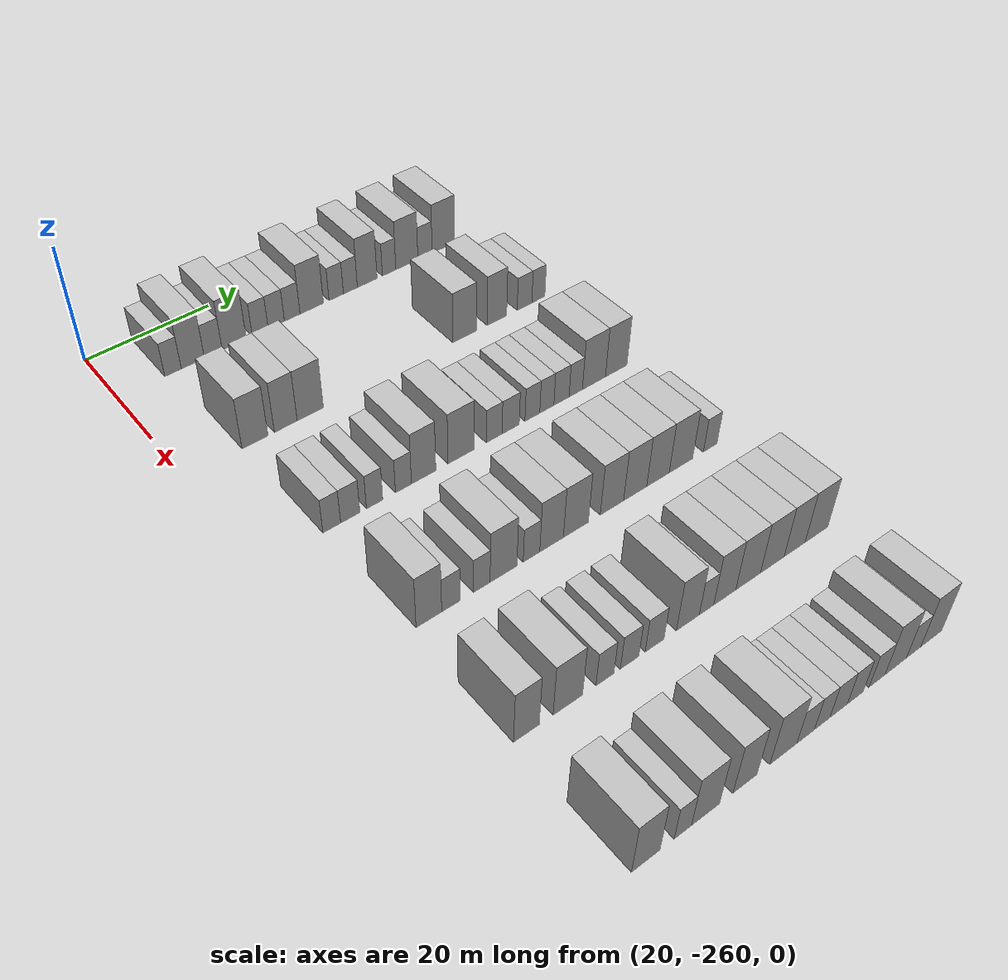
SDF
<sdf version="1.6">
 <world name="default">
  <model name="building_27">
   <static>1</static>
   <pose>25.0000 -251.3607 0 0.000000 0.000000 0.000000</pose>
   <link name="link">
    <pose>0 0 3.00 0 0 0</pose>
    <collision name="collision"><geometry><box><size>10.0000 2.6298 6.0000</size></box></geometry></collision>
    <visual name="visual">
     <cast_shadows>0</cast_shadows>
     <geometry><box><size>10.0000 2.6298 6.0000</size></box></geometry>
     <material>
      <script>
       <uri>model://HANNAS_wall/materials/scripts</uri>
       <uri>model://HANNAS_wall/materials/textures</uri>
       <name>vrc/HANNAS_wall</name>
      </script>
     </material>
    </visual>
   </link>
  </model>
  <model name="building_28">
   <static>1</static>
   <pose>25.0000 -248.1810 0 0.000000 0.000000 0.000000</pose>
   <link name="link">
    <pose>0 0 4.50 0 0 0</pose>
    <collision name="collision"><geometry><box><size>10.0000 3.7296 9.0000</size></box></geometry></collision>
    <visual name="visual">
     <cast_shadows>0</cast_shadows>
     <geometry><box><size>10.0000 3.7296 9.0000</size></box></geometry>
     <material>
      <script>
       <uri>model://HANNAS_wall/materials/scripts</uri>
       <uri>model://HANNAS_wall/materials/textures</uri>
       <name>vrc/HANNAS_wall</name>
      </script>
     </material>
    </visual>
   </link>
  </model>
  <model name="building_29">
   <static>1</static>
   <pose>25.0000 -244.8584 0 0.000000 0.000000 0.000000</pose>
   <link name="link">
    <pose>0 0 3.00 0 0 0</pose>
    <collision name="collision"><geometry><box><size>10.0000 2.9156 6.0000</size></box></geometry></collision>
    <visual name="visual">
     <cast_shadows>0</cast_shadows>
     <geometry><box><size>10.0000 2.9156 6.0000</size></box></geometry>
     <material>
      <script>
       <uri>model://HANNAS_wall/materials/scripts</uri>
       <uri>model://HANNAS_wall/materials/textures</uri>
       <name>vrc/HANNAS_wall</name>
      </script>
     </material>
    </visual>
   </link>
  </model>
  <model name="building_30">
   <static>1</static>
   <pose>25.0000 -241.3975 0 0.000000 0.000000 0.000000</pose>
   <link name="link">
    <pose>0 0 4.50 0 0 0</pose>
    <collision name="collision"><geometry><box><size>10.0000 4.0063 9.0000</size></box></geometry></collision>
    <visual name="visual">
     <cast_shadows>0</cast_shadows>
     <geometry><box><size>10.0000 4.0063 9.0000</size></box></geometry>
     <material>
      <script>
       <uri>model://HANNAS_wall/materials/scripts</uri>
       <uri>model://HANNAS_wall/materials/textures</uri>
       <name>vrc/HANNAS_wall</name>
      </script>
     </material>
    </visual>
   </link>
  </model>
  <model name="building_31">
   <static>1</static>
   <pose>25.0000 -237.0428 0 0.000000 0.000000 0.000000</pose>
   <link name="link">
    <pose>0 0 3.00 0 0 0</pose>
    <collision name="collision"><geometry><box><size>10.0000 2.7030 6.0000</size></box></geometry></collision>
    <visual name="visual">
     <cast_shadows>0</cast_shadows>
     <geometry><box><size>10.0000 2.7030 6.0000</size></box></geometry>
     <material>
      <script>
       <uri>model://HANNAS_wall/materials/scripts</uri>
       <uri>model://HANNAS_wall/materials/textures</uri>
       <name>vrc/HANNAS_wall</name>
      </script>
     </material>
    </visual>
   </link>
  </model>
  <model name="building_32">
   <static>1</static>
   <pose>25.0000 -234.2940 0 0.000000 0.000000 0.000000</pose>
   <link name="link">
    <pose>0 0 3.00 0 0 0</pose>
    <collision name="collision"><geometry><box><size>10.0000 2.7945 6.0000</size></box></geometry></collision>
    <visual name="visual">
     <cast_shadows>0</cast_shadows>
     <geometry><box><size>10.0000 2.7945 6.0000</size></box></geometry>
     <material>
      <script>
       <uri>model://HANNAS_wall/materials/scripts</uri>
       <uri>model://HANNAS_wall/materials/textures</uri>
       <name>vrc/HANNAS_wall</name>
      </script>
     </material>
    </visual>
   </link>
  </model>
  <model name="building_33">
   <static>1</static>
   <pose>25.0000 -231.5453 0 0.000000 0.000000 0.000000</pose>
   <link name="link">
    <pose>0 0 3.00 0 0 0</pose>
    <collision name="collision"><geometry><box><size>10.0000 2.7030 6.0000</size></box></geometry></collision>
    <visual name="visual">
     <cast_shadows>0</cast_shadows>
     <geometry><box><size>10.0000 2.7030 6.0000</size></box></geometry>
     <material>
      <script>
       <uri>model://HANNAS_wall/materials/scripts</uri>
       <uri>model://HANNAS_wall/materials/textures</uri>
       <name>vrc/HANNAS_wall</name>
      </script>
     </material>
    </visual>
   </link>
  </model>
  <model name="building_34">
   <static>1</static>
   <pose>25.0000 -228.1290 0 0.000000 0.000000 0.000000</pose>
   <link name="link">
    <pose>0 0 4.50 0 0 0</pose>
    <collision name="collision"><geometry><box><size>10.0000 4.1295 9.0000</size></box></geometry></collision>
    <visual name="visual">
     <cast_shadows>0</cast_shadows>
     <geometry><box><size>10.0000 4.1295 9.0000</size></box></geometry>
     <material>
      <script>
       <uri>model://HANNAS_wall/materials/scripts</uri>
       <uri>model://HANNAS_wall/materials/textures</uri>
       <name>vrc/HANNAS_wall</name>
      </script>
     </material>
    </visual>
   </link>
  </model>
  <model name="building_35">
   <static>1</static>
   <pose>25.0000 -223.7657 0 0.000000 0.000000 0.000000</pose>
   <link name="link">
    <pose>0 0 3.00 0 0 0</pose>
    <collision name="collision"><geometry><box><size>10.0000 2.5970 6.0000</size></box></geometry></collision>
    <visual name="visual">
     <cast_shadows>0</cast_shadows>
     <geometry><box><size>10.0000 2.5970 6.0000</size></box></geometry>
     <material>
      <script>
       <uri>model://HANNAS_wall/materials/scripts</uri>
       <uri>model://HANNAS_wall/materials/textures</uri>
       <name>vrc/HANNAS_wall</name>
      </script>
     </material>
    </visual>
   </link>
  </model>
  <model name="building_36">
   <static>1</static>
   <pose>25.0000 -221.1965 0 0.000000 0.000000 0.000000</pose>
   <link name="link">
    <pose>0 0 3.00 0 0 0</pose>
    <collision name="collision"><geometry><box><size>10.0000 2.5414 6.0000</size></box></geometry></collision>
    <visual name="visual">
     <cast_shadows>0</cast_shadows>
     <geometry><box><size>10.0000 2.5414 6.0000</size></box></geometry>
     <material>
      <script>
       <uri>model://HANNAS_wall/materials/scripts</uri>
       <uri>model://HANNAS_wall/materials/textures</uri>
       <name>vrc/HANNAS_wall</name>
      </script>
     </material>
    </visual>
   </link>
  </model>
  <model name="building_37">
   <static>1</static>
   <pose>25.0000 -218.1152 0 0.000000 0.000000 0.000000</pose>
   <link name="link">
    <pose>0 0 4.50 0 0 0</pose>
    <collision name="collision"><geometry><box><size>10.0000 3.6212 9.0000</size></box></geometry></collision>
    <visual name="visual">
     <cast_shadows>0</cast_shadows>
     <geometry><box><size>10.0000 3.6212 9.0000</size></box></geometry>
     <material>
      <script>
       <uri>model://HANNAS_wall/materials/scripts</uri>
       <uri>model://HANNAS_wall/materials/textures</uri>
       <name>vrc/HANNAS_wall</name>
      </script>
     </material>
    </visual>
   </link>
  </model>
  <model name="building_38">
   <static>1</static>
   <pose>25.0000 -214.0465 0 0.000000 0.000000 0.000000</pose>
   <link name="link">
    <pose>0 0 3.00 0 0 0</pose>
    <collision name="collision"><geometry><box><size>10.0000 2.5162 6.0000</size></box></geometry></collision>
    <visual name="visual">
     <cast_shadows>0</cast_shadows>
     <geometry><box><size>10.0000 2.5162 6.0000</size></box></geometry>
     <material>
      <script>
       <uri>model://HANNAS_wall/materials/scripts</uri>
       <uri>model://HANNAS_wall/materials/textures</uri>
       <name>vrc/HANNAS_wall</name>
      </script>
     </material>
    </visual>
   </link>
  </model>
  <model name="building_39">
   <static>1</static>
   <pose>25.0000 -210.6895 0 0.000000 0.000000 0.000000</pose>
   <link name="link">
    <pose>0 0 4.50 0 0 0</pose>
    <collision name="collision"><geometry><box><size>10.0000 4.1977 9.0000</size></box></geometry></collision>
    <visual name="visual">
     <cast_shadows>0</cast_shadows>
     <geometry><box><size>10.0000 4.1977 9.0000</size></box></geometry>
     <material>
      <script>
       <uri>model://HANNAS_wall/materials/scripts</uri>
       <uri>model://HANNAS_wall/materials/textures</uri>
       <name>vrc/HANNAS_wall</name>
      </script>
     </material>
    </visual>
   </link>
  </model>
  <model name="building_40">
   <static>1</static>
   <pose>25.0000 -207.2130 0 0.000000 0.000000 0.000000</pose>
   <link name="link">
    <pose>0 0 3.00 0 0 0</pose>
    <collision name="collision"><geometry><box><size>10.0000 2.7553 6.0000</size></box></geometry></collision>
    <visual name="visual">
     <cast_shadows>0</cast_shadows>
     <geometry><box><size>10.0000 2.7553 6.0000</size></box></geometry>
     <material>
      <script>
       <uri>model://HANNAS_wall/materials/scripts</uri>
       <uri>model://HANNAS_wall/materials/textures</uri>
       <name>vrc/HANNAS_wall</name>
      </script>
     </material>
    </visual>
   </link>
  </model>
  <model name="building_41">
   <static>1</static>
   <pose>25.0000 -203.6301 0 0.000000 0.000000 0.000000</pose>
   <link name="link">
    <pose>0 0 4.50 0 0 0</pose>
    <collision name="collision"><geometry><box><size>10.0000 4.4104 9.0000</size></box></geometry></collision>
    <visual name="visual">
     <cast_shadows>0</cast_shadows>
     <geometry><box><size>10.0000 4.4104 9.0000</size></box></geometry>
     <material>
      <script>
       <uri>model://HANNAS_wall/materials/scripts</uri>
       <uri>model://HANNAS_wall/materials/textures</uri>
       <name>vrc/HANNAS_wall</name>
      </script>
     </material>
    </visual>
   </link>
  </model>
  <model name="building_198">
   <static>1</static>
   <pose>44.0000 -249.3220 0 0.000000 0.000000 0.000000</pose>
   <link name="link">
    <pose>0 0 4.50 0 0 0</pose>
    <collision name="collision"><geometry><box><size>10.0000 4.0390 9.0000</size></box></geometry></collision>
    <visual name="visual">
     <cast_shadows>0</cast_shadows>
     <geometry><box><size>10.0000 4.0390 9.0000</size></box></geometry>
     <material>
      <script>
       <uri>model://HANNAS_wall/materials/scripts</uri>
       <uri>model://HANNAS_wall/materials/textures</uri>
       <name>vrc/HANNAS_wall</name>
      </script>
     </material>
    </visual>
   </link>
  </model>
  <model name="building_199">
   <static>1</static>
   <pose>44.0000 -244.4851 0 0.000000 0.000000 0.000000</pose>
   <link name="link">
    <pose>0 0 4.50 0 0 0</pose>
    <collision name="collision"><geometry><box><size>10.0000 3.6348 9.0000</size></box></geometry></collision>
    <visual name="visual">
     <cast_shadows>0</cast_shadows>
     <geometry><box><size>10.0000 3.6348 9.0000</size></box></geometry>
     <material>
      <script>
       <uri>model://HANNAS_wall/materials/scripts</uri>
       <uri>model://HANNAS_wall/materials/textures</uri>
       <name>vrc/HANNAS_wall</name>
      </script>
     </material>
    </visual>
   </link>
  </model>
  <model name="building_200">
   <static>1</static>
   <pose>44.0000 -240.5481 0 0.000000 0.000000 0.000000</pose>
   <link name="link">
    <pose>0 0 4.50 0 0 0</pose>
    <collision name="collision"><geometry><box><size>10.0000 4.2391 9.0000</size></box></geometry></collision>
    <visual name="visual">
     <cast_shadows>0</cast_shadows>
     <geometry><box><size>10.0000 4.2391 9.0000</size></box></geometry>
     <material>
      <script>
       <uri>model://HANNAS_wall/materials/scripts</uri>
       <uri>model://HANNAS_wall/materials/textures</uri>
       <name>vrc/HANNAS_wall</name>
      </script>
     </material>
    </visual>
   </link>
  </model>
  <model name="building_201">
   <static>1</static>
   <pose>44.0000 -213.9507 0 0.000000 0.000000 0.000000</pose>
   <link name="link">
    <pose>0 0 4.50 0 0 0</pose>
    <collision name="collision"><geometry><box><size>10.0000 4.3186 9.0000</size></box></geometry></collision>
    <visual name="visual">
     <cast_shadows>0</cast_shadows>
     <geometry><box><size>10.0000 4.3186 9.0000</size></box></geometry>
     <material>
      <script>
       <uri>model://HANNAS_wall/materials/scripts</uri>
       <uri>model://HANNAS_wall/materials/textures</uri>
       <name>vrc/HANNAS_wall</name>
      </script>
     </material>
    </visual>
   </link>
  </model>
  <model name="building_202">
   <static>1</static>
   <pose>44.0000 -207.9545 0 0.000000 0.000000 0.000000</pose>
   <link name="link">
    <pose>0 0 4.50 0 0 0</pose>
    <collision name="collision"><geometry><box><size>10.0000 3.6740 9.0000</size></box></geometry></collision>
    <visual name="visual">
     <cast_shadows>0</cast_shadows>
     <geometry><box><size>10.0000 3.6740 9.0000</size></box></geometry>
     <material>
      <script>
       <uri>model://HANNAS_wall/materials/scripts</uri>
       <uri>model://HANNAS_wall/materials/textures</uri>
       <name>vrc/HANNAS_wall</name>
      </script>
     </material>
    </visual>
   </link>
  </model>
  <model name="building_203">
   <static>1</static>
   <pose>44.0000 -202.7004 0 0.000000 0.000000 0.000000</pose>
   <link name="link">
    <pose>0 0 3.00 0 0 0</pose>
    <collision name="collision"><geometry><box><size>10.0000 2.8342 6.0000</size></box></geometry></collision>
    <visual name="visual">
     <cast_shadows>0</cast_shadows>
     <geometry><box><size>10.0000 2.8342 6.0000</size></box></geometry>
     <material>
      <script>
       <uri>model://HANNAS_wall/materials/scripts</uri>
       <uri>model://HANNAS_wall/materials/textures</uri>
       <name>vrc/HANNAS_wall</name>
      </script>
     </material>
    </visual>
   </link>
  </model>
  <model name="building_204">
   <static>1</static>
   <pose>44.0000 -200.0197 0 0.000000 0.000000 0.000000</pose>
   <link name="link">
    <pose>0 0 3.00 0 0 0</pose>
    <collision name="collision"><geometry><box><size>10.0000 2.5272 6.0000</size></box></geometry></collision>
    <visual name="visual">
     <cast_shadows>0</cast_shadows>
     <geometry><box><size>10.0000 2.5272 6.0000</size></box></geometry>
     <material>
      <script>
       <uri>model://HANNAS_wall/materials/scripts</uri>
       <uri>model://HANNAS_wall/materials/textures</uri>
       <name>vrc/HANNAS_wall</name>
      </script>
     </material>
    </visual>
   </link>
  </model>
  <model name="building_364">
   <static>1</static>
   <pose>63.0000 -249.5340 0 0.000000 0.000000 0.000000</pose>
   <link name="link">
    <pose>0 0 3.00 0 0 0</pose>
    <collision name="collision"><geometry><box><size>10.0000 2.6676 6.0000</size></box></geometry></collision>
    <visual name="visual">
     <cast_shadows>0</cast_shadows>
     <geometry><box><size>10.0000 2.6676 6.0000</size></box></geometry>
     <material>
      <script>
       <uri>model://HANNAS_wall/materials/scripts</uri>
       <uri>model://HANNAS_wall/materials/textures</uri>
       <name>vrc/HANNAS_wall</name>
      </script>
     </material>
    </visual>
   </link>
  </model>
  <model name="building_365">
   <static>1</static>
   <pose>63.0000 -246.7293 0 0.000000 0.000000 0.000000</pose>
   <link name="link">
    <pose>0 0 3.00 0 0 0</pose>
    <collision name="collision"><geometry><box><size>10.0000 2.9418 6.0000</size></box></geometry></collision>
    <visual name="visual">
     <cast_shadows>0</cast_shadows>
     <geometry><box><size>10.0000 2.9418 6.0000</size></box></geometry>
     <material>
      <script>
       <uri>model://HANNAS_wall/materials/scripts</uri>
       <uri>model://HANNAS_wall/materials/textures</uri>
       <name>vrc/HANNAS_wall</name>
      </script>
     </material>
    </visual>
   </link>
  </model>
  <model name="building_366">
   <static>1</static>
   <pose>63.0000 -242.9924 0 0.000000 0.000000 0.000000</pose>
   <link name="link">
    <pose>0 0 3.00 0 0 0</pose>
    <collision name="collision"><geometry><box><size>10.0000 2.5319 6.0000</size></box></geometry></collision>
    <visual name="visual">
     <cast_shadows>0</cast_shadows>
     <geometry><box><size>10.0000 2.5319 6.0000</size></box></geometry>
     <material>
      <script>
       <uri>model://HANNAS_wall/materials/scripts</uri>
       <uri>model://HANNAS_wall/materials/textures</uri>
       <name>vrc/HANNAS_wall</name>
      </script>
     </material>
    </visual>
   </link>
  </model>
  <model name="building_367">
   <static>1</static>
   <pose>63.0000 -238.4544 0 0.000000 0.000000 0.000000</pose>
   <link name="link">
    <pose>0 0 3.00 0 0 0</pose>
    <collision name="collision"><geometry><box><size>10.0000 2.5442 6.0000</size></box></geometry></collision>
    <visual name="visual">
     <cast_shadows>0</cast_shadows>
     <geometry><box><size>10.0000 2.5442 6.0000</size></box></geometry>
     <material>
      <script>
       <uri>model://HANNAS_wall/materials/scripts</uri>
       <uri>model://HANNAS_wall/materials/textures</uri>
       <name>vrc/HANNAS_wall</name>
      </script>
     </material>
    </visual>
   </link>
  </model>
  <model name="building_368">
   <static>1</static>
   <pose>63.0000 -235.2157 0 0.000000 0.000000 0.000000</pose>
   <link name="link">
    <pose>0 0 4.50 0 0 0</pose>
    <collision name="collision"><geometry><box><size>10.0000 3.9334 9.0000</size></box></geometry></collision>
    <visual name="visual">
     <cast_shadows>0</cast_shadows>
     <geometry><box><size>10.0000 3.9334 9.0000</size></box></geometry>
     <material>
      <script>
       <uri>model://HANNAS_wall/materials/scripts</uri>
       <uri>model://HANNAS_wall/materials/textures</uri>
       <name>vrc/HANNAS_wall</name>
      </script>
     </material>
    </visual>
   </link>
  </model>
  <model name="building_369">
   <static>1</static>
   <pose>63.0000 -229.0474 0 0.000000 0.000000 0.000000</pose>
   <link name="link">
    <pose>0 0 4.50 0 0 0</pose>
    <collision name="collision"><geometry><box><size>10.0000 4.4032 9.0000</size></box></geometry></collision>
    <visual name="visual">
     <cast_shadows>0</cast_shadows>
     <geometry><box><size>10.0000 4.4032 9.0000</size></box></geometry>
     <material>
      <script>
       <uri>model://HANNAS_wall/materials/scripts</uri>
       <uri>model://HANNAS_wall/materials/textures</uri>
       <name>vrc/HANNAS_wall</name>
      </script>
     </material>
    </visual>
   </link>
  </model>
  <model name="building_370">
   <static>1</static>
   <pose>63.0000 -223.4872 0 0.000000 0.000000 0.000000</pose>
   <link name="link">
    <pose>0 0 3.00 0 0 0</pose>
    <collision name="collision"><geometry><box><size>10.0000 2.7170 6.0000</size></box></geometry></collision>
    <visual name="visual">
     <cast_shadows>0</cast_shadows>
     <geometry><box><size>10.0000 2.7170 6.0000</size></box></geometry>
     <material>
      <script>
       <uri>model://HANNAS_wall/materials/scripts</uri>
       <uri>model://HANNAS_wall/materials/textures</uri>
       <name>vrc/HANNAS_wall</name>
      </script>
     </material>
    </visual>
   </link>
  </model>
  <model name="building_371">
   <static>1</static>
   <pose>63.0000 -220.6418 0 0.000000 0.000000 0.000000</pose>
   <link name="link">
    <pose>0 0 3.00 0 0 0</pose>
    <collision name="collision"><geometry><box><size>10.0000 2.9738 6.0000</size></box></geometry></collision>
    <visual name="visual">
     <cast_shadows>0</cast_shadows>
     <geometry><box><size>10.0000 2.9738 6.0000</size></box></geometry>
     <material>
      <script>
       <uri>model://HANNAS_wall/materials/scripts</uri>
       <uri>model://HANNAS_wall/materials/textures</uri>
       <name>vrc/HANNAS_wall</name>
      </script>
     </material>
    </visual>
   </link>
  </model>
  <model name="building_372">
   <static>1</static>
   <pose>63.0000 -216.8454 0 0.000000 0.000000 0.000000</pose>
   <link name="link">
    <pose>0 0 3.00 0 0 0</pose>
    <collision name="collision"><geometry><box><size>10.0000 2.6191 6.0000</size></box></geometry></collision>
    <visual name="visual">
     <cast_shadows>0</cast_shadows>
     <geometry><box><size>10.0000 2.6191 6.0000</size></box></geometry>
     <material>
      <script>
       <uri>model://HANNAS_wall/materials/scripts</uri>
       <uri>model://HANNAS_wall/materials/textures</uri>
       <name>vrc/HANNAS_wall</name>
      </script>
     </material>
    </visual>
   </link>
  </model>
  <model name="building_373">
   <static>1</static>
   <pose>63.0000 -214.2724 0 0.000000 0.000000 0.000000</pose>
   <link name="link">
    <pose>0 0 3.00 0 0 0</pose>
    <collision name="collision"><geometry><box><size>10.0000 2.5268 6.0000</size></box></geometry></collision>
    <visual name="visual">
     <cast_shadows>0</cast_shadows>
     <geometry><box><size>10.0000 2.5268 6.0000</size></box></geometry>
     <material>
      <script>
       <uri>model://HANNAS_wall/materials/scripts</uri>
       <uri>model://HANNAS_wall/materials/textures</uri>
       <name>vrc/HANNAS_wall</name>
      </script>
     </material>
    </visual>
   </link>
  </model>
  <model name="building_374">
   <static>1</static>
   <pose>63.0000 -211.6332 0 0.000000 0.000000 0.000000</pose>
   <link name="link">
    <pose>0 0 3.00 0 0 0</pose>
    <collision name="collision"><geometry><box><size>10.0000 2.7517 6.0000</size></box></geometry></collision>
    <visual name="visual">
     <cast_shadows>0</cast_shadows>
     <geometry><box><size>10.0000 2.7517 6.0000</size></box></geometry>
     <material>
      <script>
       <uri>model://HANNAS_wall/materials/scripts</uri>
       <uri>model://HANNAS_wall/materials/textures</uri>
       <name>vrc/HANNAS_wall</name>
      </script>
     </material>
    </visual>
   </link>
  </model>
  <model name="building_375">
   <static>1</static>
   <pose>63.0000 -209.0331 0 0.000000 0.000000 0.000000</pose>
   <link name="link">
    <pose>0 0 3.00 0 0 0</pose>
    <collision name="collision"><geometry><box><size>10.0000 2.4486 6.0000</size></box></geometry></collision>
    <visual name="visual">
     <cast_shadows>0</cast_shadows>
     <geometry><box><size>10.0000 2.4486 6.0000</size></box></geometry>
     <material>
      <script>
       <uri>model://HANNAS_wall/materials/scripts</uri>
       <uri>model://HANNAS_wall/materials/textures</uri>
       <name>vrc/HANNAS_wall</name>
      </script>
     </material>
    </visual>
   </link>
  </model>
  <model name="building_376">
   <static>1</static>
   <pose>63.0000 -205.6578 0 0.000000 0.000000 0.000000</pose>
   <link name="link">
    <pose>0 0 4.50 0 0 0</pose>
    <collision name="collision"><geometry><box><size>10.0000 4.3020 9.0000</size></box></geometry></collision>
    <visual name="visual">
     <cast_shadows>0</cast_shadows>
     <geometry><box><size>10.0000 4.3020 9.0000</size></box></geometry>
     <material>
      <script>
       <uri>model://HANNAS_wall/materials/scripts</uri>
       <uri>model://HANNAS_wall/materials/textures</uri>
       <name>vrc/HANNAS_wall</name>
      </script>
     </material>
    </visual>
   </link>
  </model>
  <model name="building_377">
   <static>1</static>
   <pose>63.0000 -201.4614 0 0.000000 0.000000 0.000000</pose>
   <link name="link">
    <pose>0 0 4.50 0 0 0</pose>
    <collision name="collision"><geometry><box><size>10.0000 4.0907 9.0000</size></box></geometry></collision>
    <visual name="visual">
     <cast_shadows>0</cast_shadows>
     <geometry><box><size>10.0000 4.0907 9.0000</size></box></geometry>
     <material>
      <script>
       <uri>model://HANNAS_wall/materials/scripts</uri>
       <uri>model://HANNAS_wall/materials/textures</uri>
       <name>vrc/HANNAS_wall</name>
      </script>
     </material>
    </visual>
   </link>
  </model>
  <model name="building_535">
   <static>1</static>
   <pose>82.0000 -248.3261 0 0.000000 0.000000 0.000000</pose>
   <link name="link">
    <pose>0 0 4.50 0 0 0</pose>
    <collision name="collision"><geometry><box><size>10.0000 3.7575 9.0000</size></box></geometry></collision>
    <visual name="visual">
     <cast_shadows>0</cast_shadows>
     <geometry><box><size>10.0000 3.7575 9.0000</size></box></geometry>
     <material>
      <script>
       <uri>model://HANNAS_wall/materials/scripts</uri>
       <uri>model://HANNAS_wall/materials/textures</uri>
       <name>vrc/HANNAS_wall</name>
      </script>
     </material>
    </visual>
   </link>
  </model>
  <model name="building_536">
   <static>1</static>
   <pose>82.0000 -245.0575 0 0.000000 0.000000 0.000000</pose>
   <link name="link">
    <pose>0 0 3.00 0 0 0</pose>
    <collision name="collision"><geometry><box><size>10.0000 2.7796 6.0000</size></box></geometry></collision>
    <visual name="visual">
     <cast_shadows>0</cast_shadows>
     <geometry><box><size>10.0000 2.7796 6.0000</size></box></geometry>
     <material>
      <script>
       <uri>model://HANNAS_wall/materials/scripts</uri>
       <uri>model://HANNAS_wall/materials/textures</uri>
       <name>vrc/HANNAS_wall</name>
      </script>
     </material>
    </visual>
   </link>
  </model>
  <model name="building_537">
   <static>1</static>
   <pose>82.0000 -240.4036 0 0.000000 0.000000 0.000000</pose>
   <link name="link">
    <pose>0 0 3.00 0 0 0</pose>
    <collision name="collision"><geometry><box><size>10.0000 2.5282 6.0000</size></box></geometry></collision>
    <visual name="visual">
     <cast_shadows>0</cast_shadows>
     <geometry><box><size>10.0000 2.5282 6.0000</size></box></geometry>
     <material>
      <script>
       <uri>model://HANNAS_wall/materials/scripts</uri>
       <uri>model://HANNAS_wall/materials/textures</uri>
       <name>vrc/HANNAS_wall</name>
      </script>
     </material>
    </visual>
   </link>
  </model>
  <model name="building_538">
   <static>1</static>
   <pose>82.0000 -237.0514 0 0.000000 0.000000 0.000000</pose>
   <link name="link">
    <pose>0 0 4.50 0 0 0</pose>
    <collision name="collision"><geometry><box><size>10.0000 4.1762 9.0000</size></box></geometry></collision>
    <visual name="visual">
     <cast_shadows>0</cast_shadows>
     <geometry><box><size>10.0000 4.1762 9.0000</size></box></geometry>
     <material>
      <script>
       <uri>model://HANNAS_wall/materials/scripts</uri>
       <uri>model://HANNAS_wall/materials/textures</uri>
       <name>vrc/HANNAS_wall</name>
      </script>
     </material>
    </visual>
   </link>
  </model>
  <model name="building_539">
   <static>1</static>
   <pose>82.0000 -232.6423 0 0.000000 0.000000 0.000000</pose>
   <link name="link">
    <pose>0 0 3.00 0 0 0</pose>
    <collision name="collision"><geometry><box><size>10.0000 2.6421 6.0000</size></box></geometry></collision>
    <visual name="visual">
     <cast_shadows>0</cast_shadows>
     <geometry><box><size>10.0000 2.6421 6.0000</size></box></geometry>
     <material>
      <script>
       <uri>model://HANNAS_wall/materials/scripts</uri>
       <uri>model://HANNAS_wall/materials/textures</uri>
       <name>vrc/HANNAS_wall</name>
      </script>
     </material>
    </visual>
   </link>
  </model>
  <model name="building_540">
   <static>1</static>
   <pose>82.0000 -229.3990 0 0.000000 0.000000 0.000000</pose>
   <link name="link">
    <pose>0 0 4.50 0 0 0</pose>
    <collision name="collision"><geometry><box><size>10.0000 3.8444 9.0000</size></box></geometry></collision>
    <visual name="visual">
     <cast_shadows>0</cast_shadows>
     <geometry><box><size>10.0000 3.8444 9.0000</size></box></geometry>
     <material>
      <script>
       <uri>model://HANNAS_wall/materials/scripts</uri>
       <uri>model://HANNAS_wall/materials/textures</uri>
       <name>vrc/HANNAS_wall</name>
      </script>
     </material>
    </visual>
   </link>
  </model>
  <model name="building_541">
   <static>1</static>
   <pose>82.0000 -225.4076 0 0.000000 0.000000 0.000000</pose>
   <link name="link">
    <pose>0 0 4.50 0 0 0</pose>
    <collision name="collision"><geometry><box><size>10.0000 4.1384 9.0000</size></box></geometry></collision>
    <visual name="visual">
     <cast_shadows>0</cast_shadows>
     <geometry><box><size>10.0000 4.1384 9.0000</size></box></geometry>
     <material>
      <script>
       <uri>model://HANNAS_wall/materials/scripts</uri>
       <uri>model://HANNAS_wall/materials/textures</uri>
       <name>vrc/HANNAS_wall</name>
      </script>
     </material>
    </visual>
   </link>
  </model>
  <model name="building_542">
   <static>1</static>
   <pose>82.0000 -219.3367 0 0.000000 0.000000 0.000000</pose>
   <link name="link">
    <pose>0 0 4.50 0 0 0</pose>
    <collision name="collision"><geometry><box><size>10.0000 4.0033 9.0000</size></box></geometry></collision>
    <visual name="visual">
     <cast_shadows>0</cast_shadows>
     <geometry><box><size>10.0000 4.0033 9.0000</size></box></geometry>
     <material>
      <script>
       <uri>model://HANNAS_wall/materials/scripts</uri>
       <uri>model://HANNAS_wall/materials/textures</uri>
       <name>vrc/HANNAS_wall</name>
      </script>
     </material>
    </visual>
   </link>
  </model>
  <model name="building_543">
   <static>1</static>
   <pose>82.0000 -215.3202 0 0.000000 0.000000 0.000000</pose>
   <link name="link">
    <pose>0 0 4.50 0 0 0</pose>
    <collision name="collision"><geometry><box><size>10.0000 4.0296 9.0000</size></box></geometry></collision>
    <visual name="visual">
     <cast_shadows>0</cast_shadows>
     <geometry><box><size>10.0000 4.0296 9.0000</size></box></geometry>
     <material>
      <script>
       <uri>model://HANNAS_wall/materials/scripts</uri>
       <uri>model://HANNAS_wall/materials/textures</uri>
       <name>vrc/HANNAS_wall</name>
      </script>
     </material>
    </visual>
   </link>
  </model>
  <model name="building_544">
   <static>1</static>
   <pose>82.0000 -211.2929 0 0.000000 0.000000 0.000000</pose>
   <link name="link">
    <pose>0 0 4.50 0 0 0</pose>
    <collision name="collision"><geometry><box><size>10.0000 4.0251 9.0000</size></box></geometry></collision>
    <visual name="visual">
     <cast_shadows>0</cast_shadows>
     <geometry><box><size>10.0000 4.0251 9.0000</size></box></geometry>
     <material>
      <script>
       <uri>model://HANNAS_wall/materials/scripts</uri>
       <uri>model://HANNAS_wall/materials/textures</uri>
       <name>vrc/HANNAS_wall</name>
      </script>
     </material>
    </visual>
   </link>
  </model>
  <model name="building_545">
   <static>1</static>
   <pose>82.0000 -207.1516 0 0.000000 0.000000 0.000000</pose>
   <link name="link">
    <pose>0 0 4.50 0 0 0</pose>
    <collision name="collision"><geometry><box><size>10.0000 4.2574 9.0000</size></box></geometry></collision>
    <visual name="visual">
     <cast_shadows>0</cast_shadows>
     <geometry><box><size>10.0000 4.2574 9.0000</size></box></geometry>
     <material>
      <script>
       <uri>model://HANNAS_wall/materials/scripts</uri>
       <uri>model://HANNAS_wall/materials/textures</uri>
       <name>vrc/HANNAS_wall</name>
      </script>
     </material>
    </visual>
   </link>
  </model>
  <model name="building_546">
   <static>1</static>
   <pose>82.0000 -201.7597 0 0.000000 0.000000 0.000000</pose>
   <link name="link">
    <pose>0 0 3.00 0 0 0</pose>
    <collision name="collision"><geometry><box><size>10.0000 2.5264 6.0000</size></box></geometry></collision>
    <visual name="visual">
     <cast_shadows>0</cast_shadows>
     <geometry><box><size>10.0000 2.5264 6.0000</size></box></geometry>
     <material>
      <script>
       <uri>model://HANNAS_wall/materials/scripts</uri>
       <uri>model://HANNAS_wall/materials/textures</uri>
       <name>vrc/HANNAS_wall</name>
      </script>
     </material>
    </visual>
   </link>
  </model>
  <model name="building_702">
   <static>1</static>
   <pose>101.0000 -249.0085 0 0.000000 0.000000 0.000000</pose>
   <link name="link">
    <pose>0 0 4.50 0 0 0</pose>
    <collision name="collision"><geometry><box><size>10.0000 3.6629 9.0000</size></box></geometry></collision>
    <visual name="visual">
     <cast_shadows>0</cast_shadows>
     <geometry><box><size>10.0000 3.6629 9.0000</size></box></geometry>
     <material>
      <script>
       <uri>model://HANNAS_wall/materials/scripts</uri>
       <uri>model://HANNAS_wall/materials/textures</uri>
       <name>vrc/HANNAS_wall</name>
      </script>
     </material>
    </visual>
   </link>
  </model>
  <model name="building_703">
   <static>1</static>
   <pose>101.0000 -243.0119 0 0.000000 0.000000 0.000000</pose>
   <link name="link">
    <pose>0 0 4.50 0 0 0</pose>
    <collision name="collision"><geometry><box><size>10.0000 4.3303 9.0000</size></box></geometry></collision>
    <visual name="visual">
     <cast_shadows>0</cast_shadows>
     <geometry><box><size>10.0000 4.3303 9.0000</size></box></geometry>
     <material>
      <script>
       <uri>model://HANNAS_wall/materials/scripts</uri>
       <uri>model://HANNAS_wall/materials/textures</uri>
       <name>vrc/HANNAS_wall</name>
      </script>
     </material>
    </visual>
   </link>
  </model>
  <model name="building_704">
   <static>1</static>
   <pose>101.0000 -237.4810 0 0.000000 0.000000 0.000000</pose>
   <link name="link">
    <pose>0 0 3.00 0 0 0</pose>
    <collision name="collision"><geometry><box><size>10.0000 2.7315 6.0000</size></box></geometry></collision>
    <visual name="visual">
     <cast_shadows>0</cast_shadows>
     <geometry><box><size>10.0000 2.7315 6.0000</size></box></geometry>
     <material>
      <script>
       <uri>model://HANNAS_wall/materials/scripts</uri>
       <uri>model://HANNAS_wall/materials/textures</uri>
       <name>vrc/HANNAS_wall</name>
      </script>
     </material>
    </visual>
   </link>
  </model>
  <model name="building_705">
   <static>1</static>
   <pose>101.0000 -233.6904 0 0.000000 0.000000 0.000000</pose>
   <link name="link">
    <pose>0 0 3.00 0 0 0</pose>
    <collision name="collision"><geometry><box><size>10.0000 2.8496 6.0000</size></box></geometry></collision>
    <visual name="visual">
     <cast_shadows>0</cast_shadows>
     <geometry><box><size>10.0000 2.8496 6.0000</size></box></geometry>
     <material>
      <script>
       <uri>model://HANNAS_wall/materials/scripts</uri>
       <uri>model://HANNAS_wall/materials/textures</uri>
       <name>vrc/HANNAS_wall</name>
      </script>
     </material>
    </visual>
   </link>
  </model>
  <model name="building_706">
   <static>1</static>
   <pose>101.0000 -229.7758 0 0.000000 0.000000 0.000000</pose>
   <link name="link">
    <pose>0 0 3.00 0 0 0</pose>
    <collision name="collision"><geometry><box><size>10.0000 2.9796 6.0000</size></box></geometry></collision>
    <visual name="visual">
     <cast_shadows>0</cast_shadows>
     <geometry><box><size>10.0000 2.9796 6.0000</size></box></geometry>
     <material>
      <script>
       <uri>model://HANNAS_wall/materials/scripts</uri>
       <uri>model://HANNAS_wall/materials/textures</uri>
       <name>vrc/HANNAS_wall</name>
      </script>
     </material>
    </visual>
   </link>
  </model>
  <model name="building_707">
   <static>1</static>
   <pose>101.0000 -224.4115 0 0.000000 0.000000 0.000000</pose>
   <link name="link">
    <pose>0 0 4.50 0 0 0</pose>
    <collision name="collision"><geometry><box><size>10.0000 3.7490 9.0000</size></box></geometry></collision>
    <visual name="visual">
     <cast_shadows>0</cast_shadows>
     <geometry><box><size>10.0000 3.7490 9.0000</size></box></geometry>
     <material>
      <script>
       <uri>model://HANNAS_wall/materials/scripts</uri>
       <uri>model://HANNAS_wall/materials/textures</uri>
       <name>vrc/HANNAS_wall</name>
      </script>
     </material>
    </visual>
   </link>
  </model>
  <model name="building_708">
   <static>1</static>
   <pose>101.0000 -221.3368 0 0.000000 0.000000 0.000000</pose>
   <link name="link">
    <pose>0 0 3.00 0 0 0</pose>
    <collision name="collision"><geometry><box><size>10.0000 2.4005 6.0000</size></box></geometry></collision>
    <visual name="visual">
     <cast_shadows>0</cast_shadows>
     <geometry><box><size>10.0000 2.4005 6.0000</size></box></geometry>
     <material>
      <script>
       <uri>model://HANNAS_wall/materials/scripts</uri>
       <uri>model://HANNAS_wall/materials/textures</uri>
       <name>vrc/HANNAS_wall</name>
      </script>
     </material>
    </visual>
   </link>
  </model>
  <model name="building_709">
   <static>1</static>
   <pose>101.0000 -218.2660 0 0.000000 0.000000 0.000000</pose>
   <link name="link">
    <pose>0 0 4.50 0 0 0</pose>
    <collision name="collision"><geometry><box><size>10.0000 3.7410 9.0000</size></box></geometry></collision>
    <visual name="visual">
     <cast_shadows>0</cast_shadows>
     <geometry><box><size>10.0000 3.7410 9.0000</size></box></geometry>
     <material>
      <script>
       <uri>model://HANNAS_wall/materials/scripts</uri>
       <uri>model://HANNAS_wall/materials/textures</uri>
       <name>vrc/HANNAS_wall</name>
      </script>
     </material>
    </visual>
   </link>
  </model>
  <model name="building_710">
   <static>1</static>
   <pose>101.0000 -214.2655 0 0.000000 0.000000 0.000000</pose>
   <link name="link">
    <pose>0 0 4.50 0 0 0</pose>
    <collision name="collision"><geometry><box><size>10.0000 4.2599 9.0000</size></box></geometry></collision>
    <visual name="visual">
     <cast_shadows>0</cast_shadows>
     <geometry><box><size>10.0000 4.2599 9.0000</size></box></geometry>
     <material>
      <script>
       <uri>model://HANNAS_wall/materials/scripts</uri>
       <uri>model://HANNAS_wall/materials/textures</uri>
       <name>vrc/HANNAS_wall</name>
      </script>
     </material>
    </visual>
   </link>
  </model>
  <model name="building_711">
   <static>1</static>
   <pose>101.0000 -210.0337 0 0.000000 0.000000 0.000000</pose>
   <link name="link">
    <pose>0 0 4.50 0 0 0</pose>
    <collision name="collision"><geometry><box><size>10.0000 4.2036 9.0000</size></box></geometry></collision>
    <visual name="visual">
     <cast_shadows>0</cast_shadows>
     <geometry><box><size>10.0000 4.2036 9.0000</size></box></geometry>
     <material>
      <script>
       <uri>model://HANNAS_wall/materials/scripts</uri>
       <uri>model://HANNAS_wall/materials/textures</uri>
       <name>vrc/HANNAS_wall</name>
      </script>
     </material>
    </visual>
   </link>
  </model>
  <model name="building_712">
   <static>1</static>
   <pose>101.0000 -206.0440 0 0.000000 0.000000 0.000000</pose>
   <link name="link">
    <pose>0 0 4.50 0 0 0</pose>
    <collision name="collision"><geometry><box><size>10.0000 3.7759 9.0000</size></box></geometry></collision>
    <visual name="visual">
     <cast_shadows>0</cast_shadows>
     <geometry><box><size>10.0000 3.7759 9.0000</size></box></geometry>
     <material>
      <script>
       <uri>model://HANNAS_wall/materials/scripts</uri>
       <uri>model://HANNAS_wall/materials/textures</uri>
       <name>vrc/HANNAS_wall</name>
      </script>
     </material>
    </visual>
   </link>
  </model>
  <model name="building_713">
   <static>1</static>
   <pose>101.0000 -202.0609 0 0.000000 0.000000 0.000000</pose>
   <link name="link">
    <pose>0 0 4.50 0 0 0</pose>
    <collision name="collision"><geometry><box><size>10.0000 4.1902 9.0000</size></box></geometry></collision>
    <visual name="visual">
     <cast_shadows>0</cast_shadows>
     <geometry><box><size>10.0000 4.1902 9.0000</size></box></geometry>
     <material>
      <script>
       <uri>model://HANNAS_wall/materials/scripts</uri>
       <uri>model://HANNAS_wall/materials/textures</uri>
       <name>vrc/HANNAS_wall</name>
      </script>
     </material>
    </visual>
   </link>
  </model>
  <model name="building_879">
   <static>1</static>
   <pose>120.0000 -248.8615 0 0.000000 0.000000 0.000000</pose>
   <link name="link">
    <pose>0 0 4.50 0 0 0</pose>
    <collision name="collision"><geometry><box><size>10.0000 3.9576 9.0000</size></box></geometry></collision>
    <visual name="visual">
     <cast_shadows>0</cast_shadows>
     <geometry><box><size>10.0000 3.9576 9.0000</size></box></geometry>
     <material>
      <script>
       <uri>model://HANNAS_wall/materials/scripts</uri>
       <uri>model://HANNAS_wall/materials/textures</uri>
       <name>vrc/HANNAS_wall</name>
      </script>
     </material>
    </visual>
   </link>
  </model>
  <model name="building_880">
   <static>1</static>
   <pose>120.0000 -243.6495 0 0.000000 0.000000 0.000000</pose>
   <link name="link">
    <pose>0 0 3.00 0 0 0</pose>
    <collision name="collision"><geometry><box><size>10.0000 2.4665 6.0000</size></box></geometry></collision>
    <visual name="visual">
     <cast_shadows>0</cast_shadows>
     <geometry><box><size>10.0000 2.4665 6.0000</size></box></geometry>
     <material>
      <script>
       <uri>model://HANNAS_wall/materials/scripts</uri>
       <uri>model://HANNAS_wall/materials/textures</uri>
       <name>vrc/HANNAS_wall</name>
      </script>
     </material>
    </visual>
   </link>
  </model>
  <model name="building_881">
   <static>1</static>
   <pose>120.0000 -240.3638 0 0.000000 0.000000 0.000000</pose>
   <link name="link">
    <pose>0 0 4.50 0 0 0</pose>
    <collision name="collision"><geometry><box><size>10.0000 4.1049 9.0000</size></box></geometry></collision>
    <visual name="visual">
     <cast_shadows>0</cast_shadows>
     <geometry><box><size>10.0000 4.1049 9.0000</size></box></geometry>
     <material>
      <script>
       <uri>model://HANNAS_wall/materials/scripts</uri>
       <uri>model://HANNAS_wall/materials/textures</uri>
       <name>vrc/HANNAS_wall</name>
      </script>
     </material>
    </visual>
   </link>
  </model>
  <model name="building_882">
   <static>1</static>
   <pose>120.0000 -234.4900 0 0.000000 0.000000 0.000000</pose>
   <link name="link">
    <pose>0 0 4.50 0 0 0</pose>
    <collision name="collision"><geometry><box><size>10.0000 3.6428 9.0000</size></box></geometry></collision>
    <visual name="visual">
     <cast_shadows>0</cast_shadows>
     <geometry><box><size>10.0000 3.6428 9.0000</size></box></geometry>
     <material>
      <script>
       <uri>model://HANNAS_wall/materials/scripts</uri>
       <uri>model://HANNAS_wall/materials/textures</uri>
       <name>vrc/HANNAS_wall</name>
      </script>
     </material>
    </visual>
   </link>
  </model>
  <model name="building_883">
   <static>1</static>
   <pose>120.0000 -228.5432 0 0.000000 0.000000 0.000000</pose>
   <link name="link">
    <pose>0 0 4.50 0 0 0</pose>
    <collision name="collision"><geometry><box><size>10.0000 4.2509 9.0000</size></box></geometry></collision>
    <visual name="visual">
     <cast_shadows>0</cast_shadows>
     <geometry><box><size>10.0000 4.2509 9.0000</size></box></geometry>
     <material>
      <script>
       <uri>model://HANNAS_wall/materials/scripts</uri>
       <uri>model://HANNAS_wall/materials/textures</uri>
       <name>vrc/HANNAS_wall</name>
      </script>
     </material>
    </visual>
   </link>
  </model>
  <model name="building_884">
   <static>1</static>
   <pose>120.0000 -225.0176 0 0.000000 0.000000 0.000000</pose>
   <link name="link">
    <pose>0 0 3.00 0 0 0</pose>
    <collision name="collision"><geometry><box><size>10.0000 2.8003 6.0000</size></box></geometry></collision>
    <visual name="visual">
     <cast_shadows>0</cast_shadows>
     <geometry><box><size>10.0000 2.8003 6.0000</size></box></geometry>
     <material>
      <script>
       <uri>model://HANNAS_wall/materials/scripts</uri>
       <uri>model://HANNAS_wall/materials/textures</uri>
       <name>vrc/HANNAS_wall</name>
      </script>
     </material>
    </visual>
   </link>
  </model>
  <model name="building_885">
   <static>1</static>
   <pose>120.0000 -222.3537 0 0.000000 0.000000 0.000000</pose>
   <link name="link">
    <pose>0 0 3.00 0 0 0</pose>
    <collision name="collision"><geometry><box><size>10.0000 2.5275 6.0000</size></box></geometry></collision>
    <visual name="visual">
     <cast_shadows>0</cast_shadows>
     <geometry><box><size>10.0000 2.5275 6.0000</size></box></geometry>
     <material>
      <script>
       <uri>model://HANNAS_wall/materials/scripts</uri>
       <uri>model://HANNAS_wall/materials/textures</uri>
       <name>vrc/HANNAS_wall</name>
      </script>
     </material>
    </visual>
   </link>
  </model>
  <model name="building_886">
   <static>1</static>
   <pose>120.0000 -219.6301 0 0.000000 0.000000 0.000000</pose>
   <link name="link">
    <pose>0 0 3.00 0 0 0</pose>
    <collision name="collision"><geometry><box><size>10.0000 2.9199 6.0000</size></box></geometry></collision>
    <visual name="visual">
     <cast_shadows>0</cast_shadows>
     <geometry><box><size>10.0000 2.9199 6.0000</size></box></geometry>
     <material>
      <script>
       <uri>model://HANNAS_wall/materials/scripts</uri>
       <uri>model://HANNAS_wall/materials/textures</uri>
       <name>vrc/HANNAS_wall</name>
      </script>
     </material>
    </visual>
   </link>
  </model>
  <model name="building_887">
   <static>1</static>
   <pose>120.0000 -216.8410 0 0.000000 0.000000 0.000000</pose>
   <link name="link">
    <pose>0 0 3.00 0 0 0</pose>
    <collision name="collision"><geometry><box><size>10.0000 2.6582 6.0000</size></box></geometry></collision>
    <visual name="visual">
     <cast_shadows>0</cast_shadows>
     <geometry><box><size>10.0000 2.6582 6.0000</size></box></geometry>
     <material>
      <script>
       <uri>model://HANNAS_wall/materials/scripts</uri>
       <uri>model://HANNAS_wall/materials/textures</uri>
       <name>vrc/HANNAS_wall</name>
      </script>
     </material>
    </visual>
   </link>
  </model>
  <model name="building_888">
   <static>1</static>
   <pose>120.0000 -213.1340 0 0.000000 0.000000 0.000000</pose>
   <link name="link">
    <pose>0 0 3.00 0 0 0</pose>
    <collision name="collision"><geometry><box><size>10.0000 2.7558 6.0000</size></box></geometry></collision>
    <visual name="visual">
     <cast_shadows>0</cast_shadows>
     <geometry><box><size>10.0000 2.7558 6.0000</size></box></geometry>
     <material>
      <script>
       <uri>model://HANNAS_wall/materials/scripts</uri>
       <uri>model://HANNAS_wall/materials/textures</uri>
       <name>vrc/HANNAS_wall</name>
      </script>
     </material>
    </visual>
   </link>
  </model>
  <model name="building_889">
   <static>1</static>
   <pose>120.0000 -209.8810 0 0.000000 0.000000 0.000000</pose>
   <link name="link">
    <pose>0 0 4.50 0 0 0</pose>
    <collision name="collision"><geometry><box><size>10.0000 3.7501 9.0000</size></box></geometry></collision>
    <visual name="visual">
     <cast_shadows>0</cast_shadows>
     <geometry><box><size>10.0000 3.7501 9.0000</size></box></geometry>
     <material>
      <script>
       <uri>model://HANNAS_wall/materials/scripts</uri>
       <uri>model://HANNAS_wall/materials/textures</uri>
       <name>vrc/HANNAS_wall</name>
      </script>
     </material>
    </visual>
   </link>
  </model>
  <model name="building_890">
   <static>1</static>
   <pose>120.0000 -206.7259 0 0.000000 0.000000 0.000000</pose>
   <link name="link">
    <pose>0 0 3.00 0 0 0</pose>
    <collision name="collision"><geometry><box><size>10.0000 2.5601 6.0000</size></box></geometry></collision>
    <visual name="visual">
     <cast_shadows>0</cast_shadows>
     <geometry><box><size>10.0000 2.5601 6.0000</size></box></geometry>
     <material>
      <script>
       <uri>model://HANNAS_wall/materials/scripts</uri>
       <uri>model://HANNAS_wall/materials/textures</uri>
       <name>vrc/HANNAS_wall</name>
      </script>
     </material>
    </visual>
   </link>
  </model>
  <model name="building_891">
   <static>1</static>
   <pose>120.0000 -203.5370 0 0.000000 0.000000 0.000000</pose>
   <link name="link">
    <pose>0 0 4.50 0 0 0</pose>
    <collision name="collision"><geometry><box><size>10.0000 3.8178 9.0000</size></box></geometry></collision>
    <visual name="visual">
     <cast_shadows>0</cast_shadows>
     <geometry><box><size>10.0000 3.8178 9.0000</size></box></geometry>
     <material>
      <script>
       <uri>model://HANNAS_wall/materials/scripts</uri>
       <uri>model://HANNAS_wall/materials/textures</uri>
       <name>vrc/HANNAS_wall</name>
      </script>
     </material>
    </visual>
   </link>
  </model>
 </world>
</sdf>
